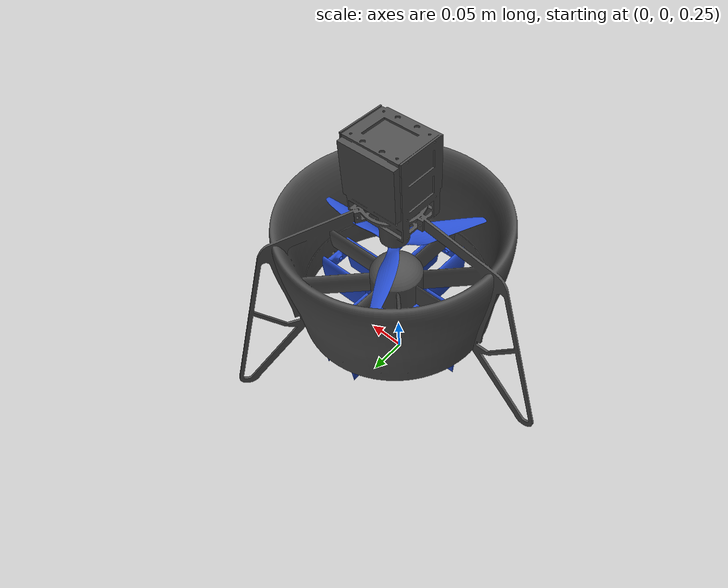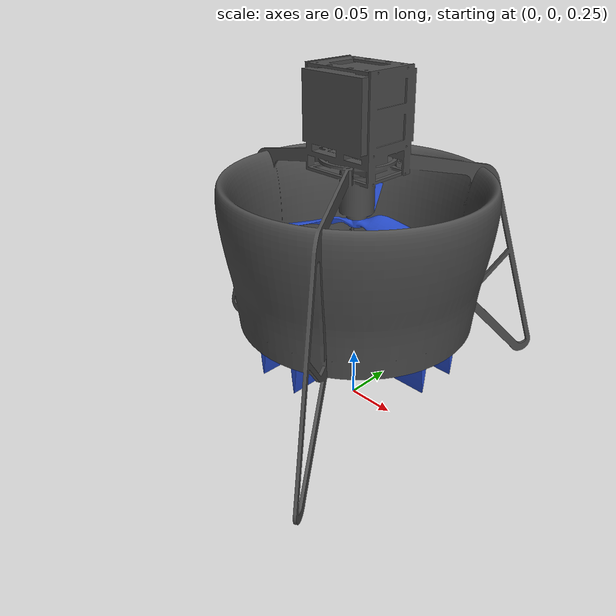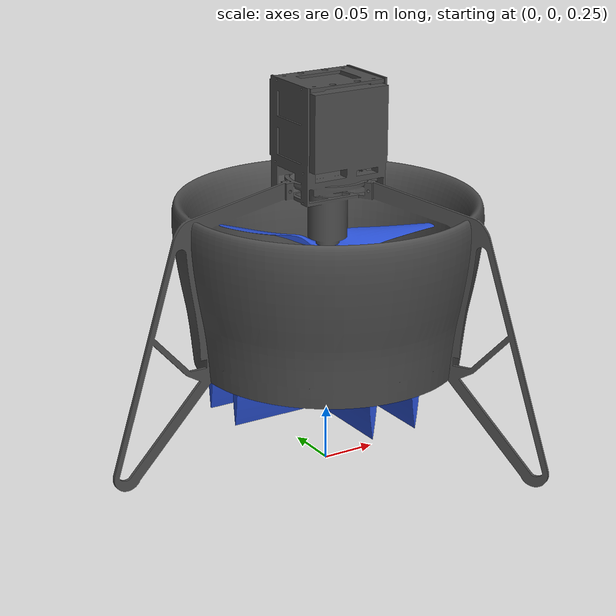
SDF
<?xml version="1.0"?>
<sdf version='1.5'>
  <model name='ductedfan4'>
    <pose>0 0 0.5 0 0 0</pose>
    <link name='base_link'>
      <pose>0 0 0 0 0 0</pose>
      <inertial>
          <mass>1.29536</mass>
          <inertia>
            <ixx>0.00967</ixx>
            <ixy>2.77142e-007</ixy>
            <ixz>-0.00003</ixz>
            <iyy>0.0097</iyy>
            <iyz>1.31952e-006</iyz>
            <izz>0.00448</izz>
          </inertia>
          <pose>0 0 0.01899931 0 -0 0</pose>
      </inertial>
      <collision name='base_link_collision'>
        <geometry>
          <box>
            <size>0.25 0.25 0.52</size>
          </box>
        </geometry>
      </collision>
      <visual name='base_link_visual'>
        <pose>0.0 0 -0.0 0 0 0</pose>
        <geometry>
          <mesh>
            <scale>1 1 1</scale>
            <uri>model://ductedfan4/meshes/base.STL</uri>
          </mesh>
        </geometry>
        <material>
          <script>
            <name>Gazebo/DarkGrey</name>
            <uri>__default__</uri>
          </script>
        </material>
      </visual>
      <gravity>1</gravity>
      <velocity_decay/>
      <self_collide>0</self_collide>
    </link>
    <link name='ductedfan4/imu_link'>
      <pose>0 0 0 0 0 0</pose>
      <inertial>
        <pose>0 0 0 0 0 0</pose>
        <mass>0.015</mass>
        <inertia>
          <ixx>1e-05</ixx>
          <ixy>0</ixy>
          <ixz>0</ixz>
          <iyy>1e-05</iyy>
          <iyz>0</iyz>
          <izz>1e-05</izz>
        </inertia>
      </inertial>
    </link>
    <joint name='ductedfan4/imu_joint' type='revolute'>
      <child>ductedfan4/imu_link</child>
      <parent>base_link</parent>
      <axis>
        <xyz>1 0 0</xyz>
        <limit>
          <lower>0</lower>
          <upper>0</upper>
          <effort>0</effort>
          <velocity>0</velocity>
        </limit>
        <dynamics>
          <spring_reference>0</spring_reference>
          <spring_stiffness>0</spring_stiffness>
        </dynamics>
        <use_parent_model_frame>1</use_parent_model_frame>
      </axis>
    </joint>
    <link name='cs1'>
      <inertial>
        <mass>0.01457</mass>
        <inertia>
          <ixx>9.25055e-006</ixx>
          <ixy>0</ixy>
          <ixz>0</ixz>
          <iyy>0.00001</iyy>
          <iyz>0</iyz>
          <izz>0.00001</izz>
        </inertia>
        <pose>0.06976717442 0 -0.14877551654 0 -0 0</pose>
      </inertial>
      <pose>0 0 0 0 -0 0</pose>
      <gravity>1</gravity>
      <self_collide>0</self_collide>
      <kinematic>0</kinematic>
      <enable_wind>0</enable_wind>
      <visual name='visual'>
        <pose>0 0 0 0 -0 0</pose>
        <geometry>
          <mesh>
            <uri>model://ductedfan4/meshes/cs11.STL</uri>
            <scale>1 1 1</scale>
          </mesh>
        </geometry>
        <material>
          <script>
            <name>Gazebo/Blue</name>
            <uri>__default__</uri>
          </script>
        </material>
        <transparency>0</transparency>
        <cast_shadows>1</cast_shadows>
      </visual>
    </link>
    <link name='cs2'>
      <inertial>
        <mass>0.01457</mass>
        <inertia>
          <ixx>0.00001</ixx>
          <ixy>0</ixy>
          <ixz>0</ixz>
          <iyy>9.25055e-006</iyy>
          <iyz>0</iyz>
          <izz>0.00001</izz>
        </inertia>
        <pose>0 -0.06976717442 -0.1487769891 0 -0 0</pose>
      </inertial>
      <pose>0 0 0 0 -0 0</pose>
      <gravity>1</gravity>
      <self_collide>0</self_collide>
      <kinematic>0</kinematic>
      <enable_wind>0</enable_wind>
      <visual name='visual'>
        <pose>0 0 0 0 -0 0</pose>
        <geometry>
          <mesh>
            <uri>model://ductedfan4/meshes/cs2.STL</uri>
            <scale>1 1 1</scale>
          </mesh>
        </geometry>
        <material>
          <script>
            <name>Gazebo/Blue</name>
            <uri>__default__</uri>
          </script>
        </material>
        <transparency>0</transparency>
        <cast_shadows>1</cast_shadows>
      </visual>
    </link>

	  <link name='cs3'>
      <inertial>
        <mass>0.01457</mass>
        <inertia>
          <ixx>9.25055e-006</ixx>
          <ixy>0</ixy>
          <ixz>0</ixz>
          <iyy>0.00001</iyy>
          <iyz>0</iyz>
          <izz>0.00001</izz>
        </inertia>
        <pose>-0.06976717442 0 -0.14877551654 0 -0 0</pose>
      </inertial>
      <pose>0 0 0 0 -0 0</pose>
      <gravity>1</gravity>
      <self_collide>0</self_collide>
      <kinematic>0</kinematic>
      <enable_wind>0</enable_wind>
      <visual name='visual'>
        <pose>0 0 0 0 -0 0</pose>
        <geometry>
          <mesh>
            <uri>model://ductedfan4/meshes/cs33.STL</uri>
            <scale>1 1 1</scale>
          </mesh>
        </geometry>
        <material>
          <script>
            <name>Gazebo/Blue</name>
            <uri>__default__</uri>
          </script>
        </material>
        <transparency>0</transparency>
        <cast_shadows>1</cast_shadows>
      </visual>
    </link>
    <link name='cs4'>
      <inertial>
        <mass>0.01457</mass>
        <inertia>
          <ixx>0.00001</ixx>
          <ixy>0</ixy>
          <ixz>0</ixz>
          <iyy>9.25055e-006</iyy>
          <iyz>0</iyz>
          <izz>0.00001</izz>
        </inertia>
        <pose>0 0.06976717442 -0.1487769891 0 -0 0</pose>
      </inertial>
      <pose>0 0 0 0 -0 0</pose>
      <gravity>1</gravity>
      <self_collide>0</self_collide>
      <kinematic>0</kinematic>
      <enable_wind>0</enable_wind>
      <visual name='visual'>
        <pose>0 0 0 0 -0 0</pose>
        <geometry>
          <mesh>
            <uri>model://ductedfan4/meshes/cs4.STL</uri>
            <scale>1 1 1</scale>
          </mesh>
        </geometry>
        <material>
          <script>
            <name>Gazebo/Blue</name>
            <uri>__default__</uri>
          </script>
        </material>
        <transparency>0</transparency>
        <cast_shadows>1</cast_shadows>
      </visual>
    </link>

    <link name='rotor'>
      <inertial>
        <mass>0.01836</mass>
        <inertia>
          <ixx>0.000019</ixx>
          <ixy>0</ixy>
          <ixz>0</ixz>
          <iyy>0.000019</iyy>
          <iyz>0</iyz>
          <izz>0.000037</izz>
        </inertia>
        <pose>-0.0 -0.0 -0.04250779552 0 -0 0</pose>
      </inertial>
      <pose>0 0 0 0 -0 0</pose>
      <gravity>1</gravity>
      <self_collide>0</self_collide>
      <kinematic>0</kinematic>
      <enable_wind>0</enable_wind>
      <visual name='visual'>
        <pose>0 0 0 0 -0 0</pose>
        <geometry>
          <mesh>
            <uri>model://ductedfan4/meshes/rotor.STL</uri>
            <scale>1 1 1</scale>
          </mesh>
        </geometry>
        <material>
          <script>
            <name>Gazebo/Blue</name>
            <uri>__default__</uri>
          </script>
        </material>
        <transparency>0</transparency>
        <cast_shadows>1</cast_shadows>
      </visual>
    </link>

    <joint name='cs1_joint' type='revolute'>
      <parent>base_link</parent>
      <child>cs1</child>
       <pose frame=''>0 0 -0.15 0 -0 0</pose>
      <axis>
        <xyz>1 0 0</xyz>
        <use_parent_model_frame>0</use_parent_model_frame>
        <limit>
          <lower>-0.35</lower>
          <upper>0.35</upper>
          <effort>-1</effort>
          <velocity>-1</velocity>
        </limit>
        <dynamics>
          <damping>0.001</damping>
          <friction>0.0</friction>
          <spring_reference>0</spring_reference>
          <spring_stiffness>0</spring_stiffness>
        </dynamics>
      </axis>
    </joint>
    <joint name='cs2_joint' type='revolute'>
      <parent>base_link</parent>
      <child>cs2</child>
      <pose frame=''>0 0 -0.15 0 -0 0</pose>
      <axis>
        <xyz>0 1 0</xyz>
        <use_parent_model_frame>0</use_parent_model_frame>
        <limit>
          <lower>-0.35</lower>
          <upper>0.35</upper>
          <effort>-1</effort>
          <velocity>-1</velocity>
        </limit>
        <dynamics>
          <damping>0.001</damping>
          <friction>0.0</friction>
          <spring_reference>0</spring_reference>
          <spring_stiffness>0</spring_stiffness>
        </dynamics>
      </axis>
    </joint>

    <joint name='cs3_joint' type='revolute'>
      <parent>base_link</parent>
      <child>cs3</child>
       <pose frame=''>0 0 -0.15 0 -0 0</pose>
      <axis>
        <xyz>1 0 0</xyz>
        <use_parent_model_frame>0</use_parent_model_frame>
        <limit>
          <lower>-0.35</lower>
          <upper>0.35</upper>
          <effort>-1</effort>
          <velocity>-1</velocity>
        </limit>
        <dynamics>
          <damping>0.001</damping>
          <friction>0.0</friction>
          <spring_reference>0</spring_reference>
          <spring_stiffness>0</spring_stiffness>
        </dynamics>
      </axis>
    </joint>
    <joint name='cs4_joint' type='revolute'>
      <parent>base_link</parent>
      <child>cs4</child>
      <pose frame=''>0 0 -0.15 0 -0 0</pose>
      <axis>
        <xyz>0 1 0</xyz>
        <use_parent_model_frame>0</use_parent_model_frame>
        <limit>
          <lower>-0.35</lower>
          <upper>0.35</upper>
          <effort>-1</effort>
          <velocity>-1</velocity>
        </limit>
        <dynamics>
          <damping>0.001</damping>
          <friction>0.0</friction>
          <spring_reference>0</spring_reference>
          <spring_stiffness>0</spring_stiffness>
        </dynamics>
      </axis>
    </joint>

    <joint name='rotor_joint' type='revolute'>
      <parent>base_link</parent>
      <child>rotor</child>
      <pose frame=''>0 0 -0.045 0 -0 0</pose>
      <axis>
        <xyz>0 0 1</xyz>
        <use_parent_model_frame>0</use_parent_model_frame>
        <limit>
          <lower>-1e+16</lower>
          <upper>1e+16</upper>
          <effort>-1</effort>
          <velocity>-1</velocity>
        </limit>
        <dynamics>
          <spring_reference>0</spring_reference>
          <spring_stiffness>0</spring_stiffness>
          <damping>0.0</damping>
          <friction>0</friction>
        </dynamics>
      </axis>
      <physics>
        <ode>
          <limit>
            <cfm>0</cfm>
            <erp>0.2</erp>
          </limit>
          <suspension>
            <cfm>0</cfm>
            <erp>0.2</erp>
          </suspension>
        </ode>
      </physics>
    </joint>

    <include>
      <uri>model://gps</uri>
      <pose>0 0 0 0 0 0</pose>
      <name>gps</name>
    </include>
    <joint name='gps_joint' type='fixed'>
      <child>gps::link</child>
      <parent>base_link</parent>
    </joint>
    <plugin name="cs1_plugin" filename="libLiftDragPlugin.so">
      <is_sductedfan>1</is_sductedfan>
      <num_of_propeller>1</num_of_propeller>
      <wind_from_propeller>
        <propeller name="up_propeller">
          <propeller_index>0</propeller_index>
          <propeller_joint>rotor_joint</propeller_joint>
          <propeller_wind_constant>0.169</propeller_wind_constant>
        </propeller>
      </wind_from_propeller>
      <a0>0</a0>
      <cla>0</cla>
      <cda>0</cda>
      <cma>0</cma>
      <alpha_stall>0.6</alpha_stall>
      <cla_stall>0</cla_stall>
      <cda_stall>0.0</cda_stall>
      <cma_stall>0</cma_stall>
      <cp>0.069 0 -0.148</cp>
      <area>0.0018</area>
      <air_density>1.2041</air_density>
      <forward>0 0 1</forward>
      <upward>0 -1 0</upward>
      <link_name>base_link</link_name>
      <control_joint_name>cs1_joint</control_joint_name>
      <control_joint_rad_to_cl>6.7362</control_joint_rad_to_cl>
      <robotNamespace></robotNamespace>
      <windSubTopic>world_wind</windSubTopic>
    </plugin>
    <plugin name="cs2_plugin" filename="libLiftDragPlugin.so">
      <is_sductedfan>1</is_sductedfan>
      <num_of_propeller>1</num_of_propeller>
      <wind_from_propeller>
        <propeller name="up_propeller">
          <propeller_index>0</propeller_index>
          <propeller_joint>rotor_joint</propeller_joint>
          <propeller_wind_constant>0.169</propeller_wind_constant>
        </propeller>
      </wind_from_propeller>
      <a0>0</a0>
      <cla>0</cla>
      <cda>0</cda>
      <cma>0</cma>
      <alpha_stall>0.6</alpha_stall>
      <cla_stall>0</cla_stall>
      <cda_stall>0.0</cda_stall>
      <cma_stall>0</cma_stall>
      <cp>0 -0.069 -0.148</cp>
      <area>0.0018</area>
      <air_density>1.2041</air_density>
      <forward>0 0 1</forward>
      <upward>1 0 0</upward>
      <link_name>base_link</link_name>
      <control_joint_name>cs2_joint</control_joint_name>
      <control_joint_rad_to_cl>6.7362</control_joint_rad_to_cl>
      <robotNamespace></robotNamespace>
      <windSubTopic>world_wind</windSubTopic>
    </plugin>

    <plugin name="cs3_plugin" filename="libLiftDragPlugin.so">
      <is_sductedfan>1</is_sductedfan>
      <num_of_propeller>1</num_of_propeller>
      <wind_from_propeller>
        <propeller name="up_propeller">
          <propeller_index>0</propeller_index>
          <propeller_joint>rotor_joint</propeller_joint>
          <propeller_wind_constant>0.169</propeller_wind_constant>
        </propeller>
      </wind_from_propeller>
      <a0>0</a0>
      <cla>0</cla>
      <cda>0</cda>
      <cma>0</cma>
      <alpha_stall>0.6</alpha_stall>
      <cla_stall>0</cla_stall>
      <cda_stall>0.0</cda_stall>
      <cma_stall>0</cma_stall>
      <cp>-0.069 0 -0.148</cp>
      <area>0.0018</area>
      <air_density>1.2041</air_density>
      <forward>0 0 1</forward>
      <upward>0 -1 0</upward>
      <link_name>base_link</link_name>
      <control_joint_name>cs3_joint</control_joint_name>
      <control_joint_rad_to_cl>6.7362</control_joint_rad_to_cl>
      <robotNamespace></robotNamespace>
      <windSubTopic>world_wind</windSubTopic>
    </plugin>
    <plugin name="cs4_plugin" filename="libLiftDragPlugin.so">
      <is_sductedfan>1</is_sductedfan>
      <num_of_propeller>1</num_of_propeller>
      <wind_from_propeller>
        <propeller name="up_propeller">
          <propeller_index>0</propeller_index>
          <propeller_joint>rotor_joint</propeller_joint>
          <propeller_wind_constant>0.169</propeller_wind_constant>
        </propeller>
      </wind_from_propeller>
      <a0>0</a0>
      <cla>0</cla>
      <cda>0</cda>
      <cma>0</cma>
      <alpha_stall>0.6</alpha_stall>
      <cla_stall>0</cla_stall>
      <cda_stall>0.0</cda_stall>
      <cma_stall>0</cma_stall>
      <cp>0 0.069 -0.148</cp>
      <area>0.0018</area>
      <air_density>1.2041</air_density>
      <forward>0 0 1</forward>
      <upward>1 0 0</upward>
      <link_name>base_link</link_name>
      <control_joint_name>cs4_joint</control_joint_name>
      <control_joint_rad_to_cl>6.7362</control_joint_rad_to_cl>
      <robotNamespace></robotNamespace>
      <windSubTopic>world_wind</windSubTopic>
    </plugin>

    <plugin name='rotor_plugin' filename='libgazebo_motor_model.so'>
      <robotNamespace></robotNamespace>
      <jointName>rotor_joint</jointName>
      <linkName>rotor</linkName>
      <turningDirection>ccw</turningDirection>
      <timeConstantUp>0.0125</timeConstantUp>
      <timeConstantDown>0.025</timeConstantDown>
      <maxRotVelocity>2450</maxRotVelocity>
      <!-- Lift Force T -->
      <motorConstant>9.1316618e-6</motorConstant>
      <!-- Drag moment by H-->
      <momentConstant>0.0</momentConstant>
      <commandSubTopic>/gazebo/command/motor_speed</commandSubTopic>
      <motorNumber>0</motorNumber>
      <!-- Drag Force H-->
      <rotorDragCoefficient>0</rotorDragCoefficient>
      <!-- Drag moment by T -->
      <rollingMomentCoefficient>0</rollingMomentCoefficient>
      <motorSpeedPubTopic>/motor_speed/0</motorSpeedPubTopic>
      <rotorVelocitySlowdownSim>10</rotorVelocitySlowdownSim>
      <robotNamespace></robotNamespace>
    </plugin>

    <plugin name='gazebo_imu_plugin' filename='libgazebo_imu_plugin.so'>
      <robotNamespace></robotNamespace>
      <linkName>ductedfan4/imu_link</linkName>
      <imuTopic>/imu</imuTopic>
      <gyroscopeNoiseDensity>0.00018665</gyroscopeNoiseDensity>
      <gyroscopeRandomWalk>3.8785e-05</gyroscopeRandomWalk>
      <gyroscopeBiasCorrelationTime>1000.0</gyroscopeBiasCorrelationTime>
      <gyroscopeTurnOnBiasSigma>0.0087</gyroscopeTurnOnBiasSigma>
      <accelerometerNoiseDensity>0.00186</accelerometerNoiseDensity>
      <accelerometerRandomWalk>0.006</accelerometerRandomWalk>
      <accelerometerBiasCorrelationTime>300.0</accelerometerBiasCorrelationTime>
      <accelerometerTurnOnBiasSigma>0.196</accelerometerTurnOnBiasSigma>
    </plugin>
    <plugin name='groundtruth_plugin' filename='libgazebo_groundtruth_plugin.so'>
      <robotNamespace/>
    </plugin>
    <plugin name='magnetometer_plugin' filename='libgazebo_magnetometer_plugin.so'>
      <robotNamespace/>
      <pubRate>100</pubRate>
      <noiseDensity>0.0004</noiseDensity>
      <randomWalk>6.4e-06</randomWalk>
      <biasCorrelationTime>600</biasCorrelationTime>
      <magTopic>/mag</magTopic>
    </plugin>
    <plugin name='barometer_plugin' filename='libgazebo_barometer_plugin.so'>
      <robotNamespace/>
      <pubRate>50</pubRate>
      <baroTopic>/baro</baroTopic>
    </plugin>
    <plugin name='mavlink_interface' filename='libgazebo_mavlink_interface.so'>
      <robotNamespace></robotNamespace>
      <imuSubTopic>/imu</imuSubTopic>
      <magSubTopic>/mag</magSubTopic>
      <baroSubTopic>/baro</baroSubTopic>
      <mavlink_addr>INADDR_ANY</mavlink_addr>
      <mavlink_tcp_port>4560</mavlink_tcp_port>
      <mavlink_udp_port>14560</mavlink_udp_port>
      <serialEnabled>0</serialEnabled>
      <serialDevice>/dev/ttyACM0</serialDevice>
      <baudRate>921600</baudRate>
      <qgc_addr>INADDR_ANY</qgc_addr>
      <qgc_udp_port>14550</qgc_udp_port>
      <sdk_addr>INADDR_ANY</sdk_addr>
      <sdk_udp_port>14540</sdk_udp_port>
      <hil_mode>0</hil_mode>
      <hil_state_level>false</hil_state_level>
      <enable_lockstep>true</enable_lockstep>
      <use_tcp>true</use_tcp>
      <motorSpeedCommandPubTopic>/gazebo/command/motor_speed</motorSpeedCommandPubTopic>
      <control_channels>
        <channel name="up_rotor">
          <input_index>0</input_index>
          <input_offset>0</input_offset>
          <!-- Construct a gain to cancel the link from pwm to motor speed. -->
          <input_scaling>2450</input_scaling>
          <zero_position_disarmed>0</zero_position_disarmed>
          <zero_position_armed>0</zero_position_armed>
          <joint_control_type>velocity</joint_control_type>
          <joint_name>rotor_joint</joint_name>
        </channel>
        <channel name="roll1">
          <input_index>2</input_index>
          <input_offset>0</input_offset>
          <input_scaling>0.35</input_scaling>
          <zero_position_disarmed>0</zero_position_disarmed>
          <zero_position_armed>0</zero_position_armed>
          <joint_control_type>position</joint_control_type>
          <joint_name>cs1_joint</joint_name>
          <joint_control_pid>
            <p>1</p>
            <i>0</i>
            <d>0</d>
            <iMax>0.5</iMax>
            <iMin>-0.5</iMin>
            <cmdMax>10</cmdMax>
            <cmdMin>-10</cmdMin>
            <errMax>20</errMax>
          </joint_control_pid>
        </channel>
        <channel name="pitch1">
          <input_index>3</input_index>
          <input_offset>0</input_offset>
          <input_scaling>-0.35</input_scaling>
          <zero_position_disarmed>0</zero_position_disarmed>
          <zero_position_armed>0</zero_position_armed>
          <joint_control_type>position</joint_control_type>
          <joint_name>cs2_joint</joint_name>
          <joint_control_pid>
            <p>1</p>
            <i>0.0</i>
            <d>0</d>
            <iMax>0.5</iMax>
            <iMin>-0.5</iMin>
            <cmdMax>10</cmdMax>
            <cmdMin>-10</cmdMin>
            <errMax>20</errMax>
          </joint_control_pid>
        </channel>
        <channel name="roll2">
          <input_index>4</input_index>
          <input_offset>0</input_offset>
          <input_scaling>-0.35</input_scaling>
          <zero_position_disarmed>0</zero_position_disarmed>
          <zero_position_armed>0</zero_position_armed>
          <joint_control_type>position</joint_control_type>
          <joint_name>cs3_joint</joint_name>
          <joint_control_pid>
            <p>1</p>
            <i>0</i>
            <d>0</d>
            <iMax>0.5</iMax>
            <iMin>-0.5</iMin>
            <cmdMax>10</cmdMax>
            <cmdMin>-10</cmdMin>
            <errMax>20</errMax>
          </joint_control_pid>
        </channel>
        <channel name="pitch2">
          <input_index>5</input_index>
          <input_offset>0</input_offset>
          <input_scaling>0.35</input_scaling>
          <zero_position_disarmed>0</zero_position_disarmed>
          <zero_position_armed>0</zero_position_armed>
          <joint_control_type>position</joint_control_type>
          <joint_name>cs4_joint</joint_name>
          <joint_control_pid>
            <p>1</p>
            <i>0.0</i>
            <d>0</d>
            <iMax>0.5</iMax>
            <iMin>-0.5</iMin>
            <cmdMax>10</cmdMax>
            <cmdMin>-10</cmdMin>
            <errMax>20</errMax>
          </joint_control_pid>
        </channel>
      </control_channels>
    </plugin>
    <static>0</static>
  </model>
</sdf>

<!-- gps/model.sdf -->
<sdf version="1.6">
  <model name="gps">
    <link name="link">
      <pose>0 0 0 0 0 0</pose>
      <inertial>
        <pose>0 0 0 0 0 0</pose>
        <mass>0.015</mass>
        <inertia>
          <ixx>1e-05</ixx>
          <ixy>0</ixy>
          <ixz>0</ixz>
          <iyy>1e-05</iyy>
          <iyz>0</iyz>
          <izz>1e-05</izz>
        </inertia>
      </inertial>
      <visual name="visual">
        <geometry>
          <cylinder>
            <radius>0.01</radius>
            <length>0.002</length>
          </cylinder>
        </geometry>
        <material>
          <script>
            <name>Gazebo/Black</name>
            <uri>file://usr/share/gz/gz-sim8/media/gazebo.material</uri>
          </script>
        </material>
      </visual>
      <sensor name="gps" type="gps">
        <pose>0 0 0 0 0 0</pose>
        <update_rate>5.0</update_rate>
        <always_on>true</always_on>
        <visualize>false</visualize>
        <!-- GpsSensor noise currently not used -->
        <plugin name="gps_plugin" filename="libgazebo_gps_plugin.so">
          <robotNamespace></robotNamespace>
          <gpsNoise>true</gpsNoise>
          <gpsXYRandomWalk>2.0</gpsXYRandomWalk>
          <gpsZRandomWalk>4.0</gpsZRandomWalk>
          <gpsXYNoiseDensity>2.0e-4</gpsXYNoiseDensity>
          <gpsZNoiseDensity>4.0e-4</gpsZNoiseDensity>
          <gpsVXYNoiseDensity>0.2</gpsVXYNoiseDensity>
          <gpsVZNoiseDensity>0.4</gpsVZNoiseDensity>
        </plugin>
      </sensor>
    </link>
  </model>
</sdf>
